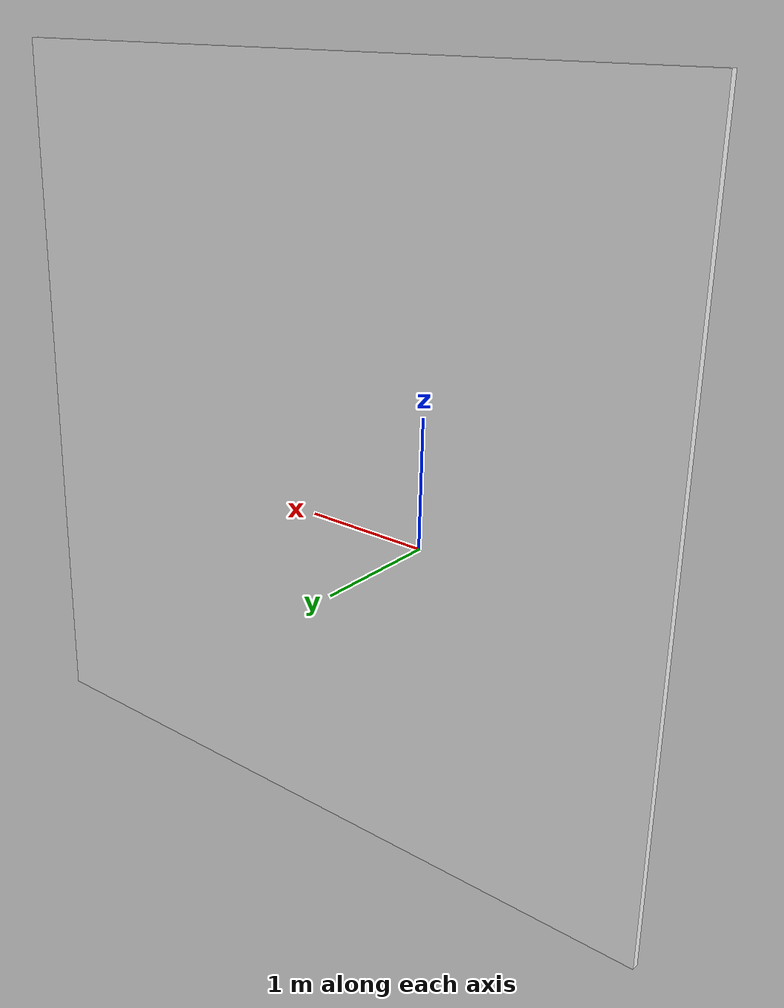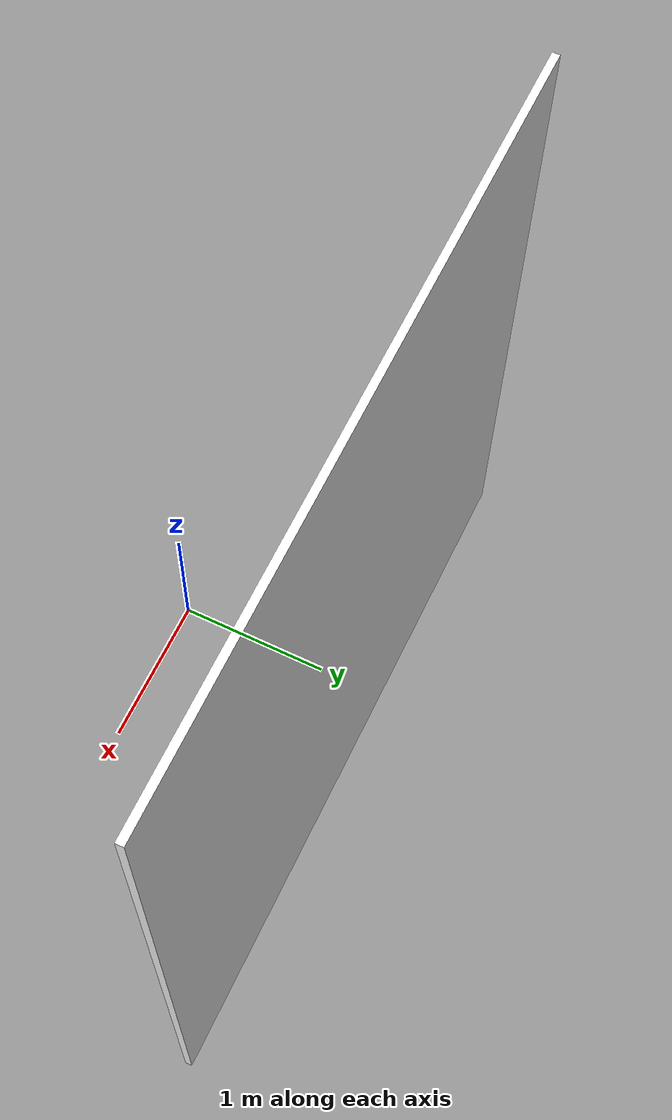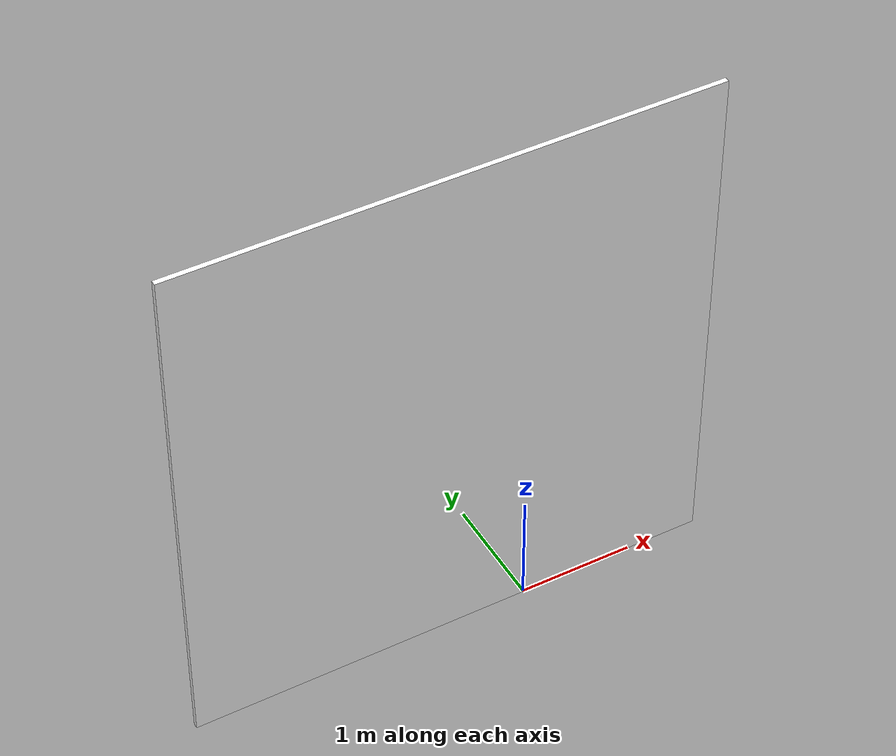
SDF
<?xml version="1.0" ?>
<sdf version="1.6">
  <world name="my_empty_world">
    <!-- AprilTag cube model -->
    <model name="apriltag_cube">
      <static>true</static>
      <pose>0 1.2 1 0 0 0</pose>  <!-- x y z roll pitch yaw -->
      <link name="link">
        <visual name="visual">
          <geometry>
            <box>
              <size>5 0.05 5</size> <!-- 5cm cube -->
            </box>
          </geometry>
        <material>
          <ambient>1 1 1 1</ambient>
          <diffuse>1 1 1 1</diffuse>
          <specular>0 0 0 1</specular>
          <emissive>0 0 0 1</emissive>
          <script>
            <uri>file://$(find icl_ur5_setup_gazebo)/materials/textures</uri>
            <name>tag36_11_00000</name>
          </script>
        </material>
        </visual>
        <collision name="collision">
          <geometry>
            <box>
              <size>0.05 0.05 0.05</size>
            </box>
          </geometry>
        </collision>
      </link>
    </model>
  </world>
</sdf>
